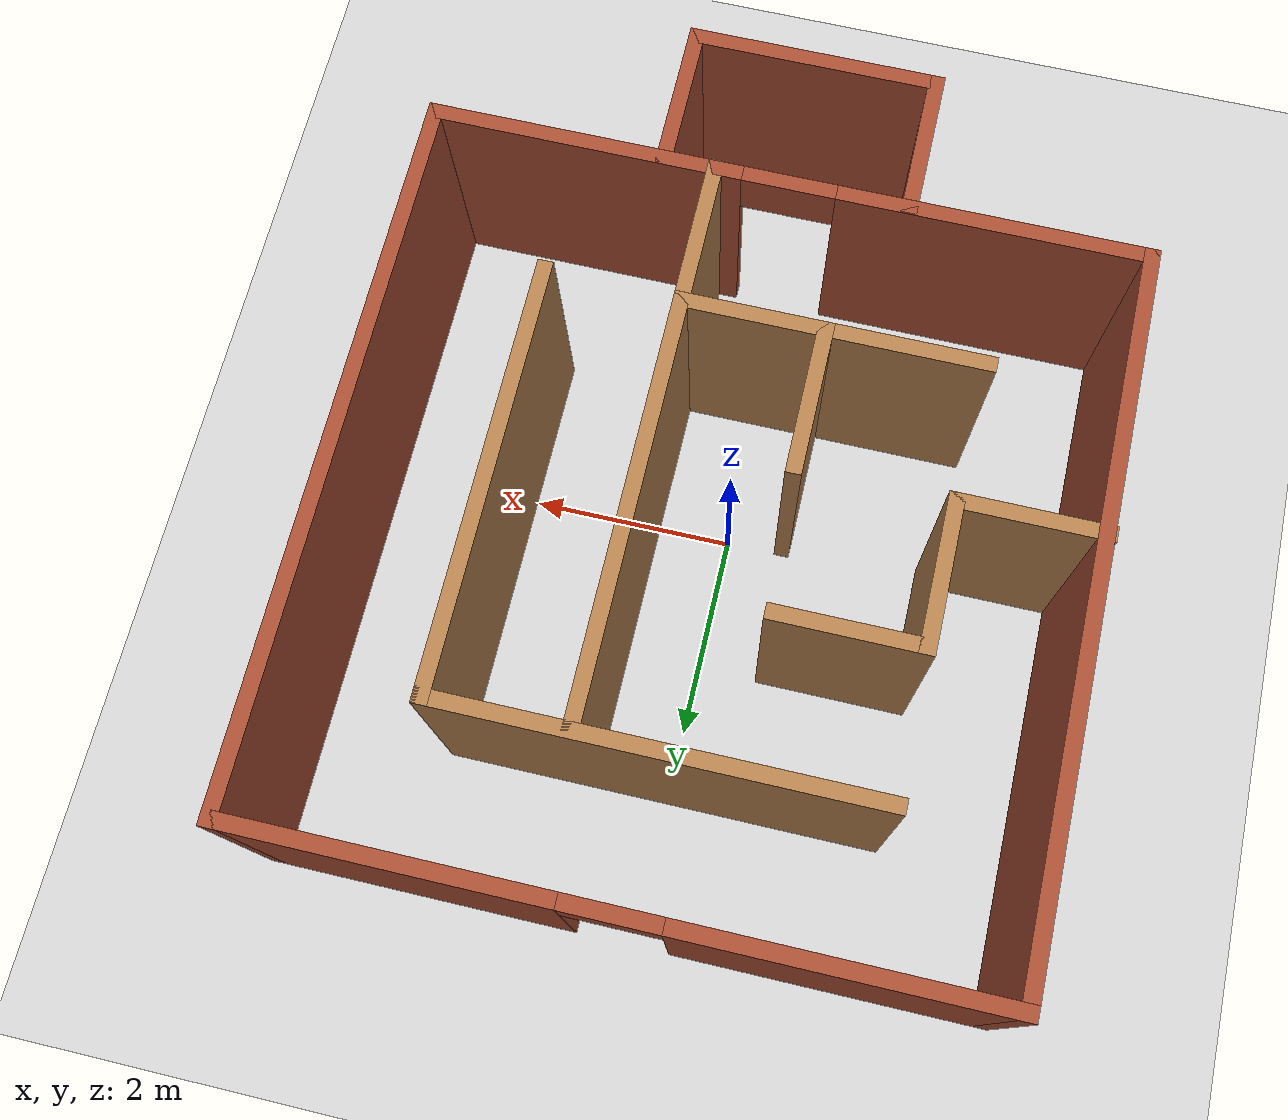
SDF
<sdf version="1.7">
 <world name="default">
  <light name="sun" type="directional">
   <pose>0 0 10 0 -0 0</pose>
   <diffuse>0.8 0.8 0.8 1</diffuse>
   <specular>0.2 0.2 0.2 1</specular>
   <attenuation>
    <range>1000</range>
    <constant>0.9</constant>
    <linear>0.01</linear>
    <quadratic>0.001</quadratic>
   </attenuation>
   <direction>-0.5 0.1 -0.9</direction>
   <spot><inner_angle>0</inner_angle><outer_angle>0</outer_angle><falloff>0</falloff></spot>
  </light>
  <model name="ground_plane">
   <static>1</static>
   <link name="link">
    <collision name="collision">
     <geometry><plane><normal>0 0 1</normal><size>100 100</size></plane></geometry>
     <surface><friction><ode><mu>100</mu><mu2>50</mu2></ode></friction></surface>
    </collision>
    <visual name="visual">
     <cast_shadows>0</cast_shadows>
     <geometry><plane><normal>0 0 1</normal><size>100 100</size></plane></geometry>
     <material>
      <script><uri>file://media/materials/scripts/gazebo.material</uri><name>Gazebo/Grey</name></script>
     </material>
    </visual>
   </link>
  </model>
  <gravity>0 0 -9.8</gravity>
  <magnetic_field>6e-06 2.3e-05 -4.2e-05</magnetic_field>
  <atmosphere type="adiabatic"/>
  <physics type="ode">
   <max_step_size>0.001</max_step_size>
   <real_time_factor>1</real_time_factor>
   <real_time_update_rate>1000</real_time_update_rate>
  </physics>
  <scene><ambient>0.4 0.4 0.4 1</ambient><background>0.7 0.7 0.7 1</background><shadows>1</shadows></scene>
  <audio><device>default</device></audio>
  <spherical_coordinates>
   <surface_model>EARTH_WGS84</surface_model>
   <latitude_deg>0</latitude_deg>
   <longitude_deg>0</longitude_deg>
   <elevation>0</elevation>
   <heading_deg>0</heading_deg>
  </spherical_coordinates>
  <model name="maze">
   <pose>0.083365 -0.083784 0 0 -0 0</pose>
   <link name="Wall_0">
    <collision name="Wall_0_Collision">
     <geometry><box><size>7 0.15 2.5</size></box></geometry>
     <pose>0 0 1.25 0 -0 0</pose>
    </collision>
    <visual name="Wall_0_Visual">
     <pose>0 0 1.25 0 -0 0</pose>
     <geometry><box><size>7 0.15 2.5</size></box></geometry>
     <material>
      <script><uri>file://media/materials/scripts/gazebo.material</uri><name>Gazebo/Bricks</name></script>
      <ambient>1 1 1 1</ambient>
     </material>
     <meta><layer>0</layer></meta>
    </visual>
    <pose>-3.41626 0.681812 0 0 -0 -1.5708</pose>
   </link>
   <link name="Wall_10">
    <collision name="Wall_10_Collision">
     <geometry><box><size>4.25 0.15 2.5</size></box></geometry>
     <pose>0 0 1.25 0 -0 0</pose>
    </collision>
    <visual name="Wall_10_Visual">
     <pose>0 0 1.25 0 -0 0</pose>
     <geometry><box><size>4.25 0.15 2.5</size></box></geometry>
     <material>
      <script><uri>file://media/materials/scripts/gazebo.material</uri><name>Gazebo/Wood</name></script>
      <ambient>1 1 1 1</ambient>
     </material>
     <meta><layer>0</layer></meta>
    </visual>
    <pose>2.01299 0.675098 0 0 -0 -1.5708</pose>
   </link>
   <link name="Wall_12">
    <collision name="Wall_12_Collision">
     <geometry><box><size>5.60693 0.15 2.5</size></box></geometry>
     <pose>0 0 1.25 0 -0 0</pose>
    </collision>
    <visual name="Wall_12_Visual">
     <pose>0 0 1.25 0 -0 0</pose>
     <geometry><box><size>5.60693 0.15 2.5</size></box></geometry>
     <material>
      <script><uri>file://media/materials/scripts/gazebo.material</uri><name>Gazebo/Wood</name></script>
      <ambient>1 1 1 1</ambient>
     </material>
     <meta><layer>0</layer></meta>
    </visual>
    <pose>0.711399 -0.020842 0 0 -0 -1.5708</pose>
   </link>
   <link name="Wall_14">
    <collision name="Wall_14_Collision">
     <geometry><box><size>1.5 0.15 2.5</size></box></geometry>
     <pose>0 0 1.25 0 -0 0</pose>
    </collision>
    <visual name="Wall_14_Visual">
     <pose>0 0 1.25 0 -0 0</pose>
     <geometry><box><size>1.5 0.15 2.5</size></box></geometry>
     <material>
      <script><uri>file://media/materials/scripts/gazebo.material</uri><name>Gazebo/Wood</name></script>
      <ambient>1 1 1 1</ambient>
     </material>
     <meta><layer>0</layer></meta>
    </visual>
    <pose>-2.75874 -0.003352 0 0 -0 0</pose>
   </link>
   <link name="Wall_15">
    <collision name="Wall_15_Collision">
     <geometry><box><size>1.5 0.15 2.5</size></box></geometry>
     <pose>0 0 1.25 0 -0 0</pose>
    </collision>
    <visual name="Wall_15_Visual">
     <pose>0 0 1.25 0 -0 0</pose>
     <geometry><box><size>1.5 0.15 2.5</size></box></geometry>
     <material>
      <script><uri>file://media/materials/scripts/gazebo.material</uri><name>Gazebo/Wood</name></script>
      <ambient>1 1 1 1</ambient>
     </material>
     <meta><layer>0</layer></meta>
    </visual>
    <pose>-2.08374 0.671648 0 0 -0 1.5708</pose>
   </link>
   <link name="Wall_16">
    <collision name="Wall_16_Collision">
     <geometry><box><size>1.5 0.15 2.5</size></box></geometry>
     <pose>0 0 1.25 0 -0 0</pose>
    </collision>
    <visual name="Wall_16_Visual">
     <pose>0 0 1.25 0 -0 0</pose>
     <geometry><box><size>1.5 0.15 2.5</size></box></geometry>
     <material>
      <script><uri>file://media/materials/scripts/gazebo.material</uri><name>Gazebo/Wood</name></script>
      <ambient>1 1 1 1</ambient>
     </material>
     <meta><layer>0</layer></meta>
    </visual>
    <pose>-1.40874 1.34665 0 0 -0 0</pose>
   </link>
   <link name="Wall_18">
    <collision name="Wall_18_Collision">
     <geometry><box><size>3 0.15 2.5</size></box></geometry>
     <pose>0 0 1.25 0 -0 0</pose>
    </collision>
    <visual name="Wall_18_Visual">
     <pose>0 0 1.25 0 -0 0</pose>
     <geometry><box><size>3 0.15 2.5</size></box></geometry>
     <material>
      <script><uri>file://media/materials/scripts/gazebo.material</uri><name>Gazebo/Wood</name></script>
      <ambient>1 1 1 1</ambient>
     </material>
     <meta><layer>0</layer></meta>
    </visual>
    <pose>-0.713601 -1.35009 0 0 -0 3.14159</pose>
   </link>
   <link name="Wall_20">
    <collision name="Wall_20_Collision">
     <geometry><box><size>1.5 0.15 2.5</size></box></geometry>
     <pose>0 0 1.25 0 -0 0</pose>
    </collision>
    <visual name="Wall_20_Visual">
     <pose>0 0 1.25 0 -0 0</pose>
     <geometry><box><size>1.5 0.15 2.5</size></box></geometry>
     <material>
      <script><uri>file://media/materials/scripts/gazebo.material</uri><name>Gazebo/Wood</name></script>
      <ambient>1 1 1 1</ambient>
     </material>
     <meta><layer>0</layer></meta>
    </visual>
    <pose>-0.635335 -0.675087 0 0 -0 1.5708</pose>
   </link>
   <link name="Wall_22">
    <pose>0.008745 4.10681 0 0 -0 0</pose>
    <visual name="Wall_22_Visual_0">
     <pose>-1.96767 0 1.25 0 -0 0</pose>
     <geometry><box><size>3.06465 0.15 2.5</size></box></geometry>
     <material>
      <script><uri>file://media/materials/scripts/gazebo.material</uri><name>Gazebo/Bricks</name></script>
      <ambient>1 1 1 1</ambient>
     </material>
     <meta><layer>0</layer></meta>
    </visual>
    <collision name="Wall_22_Collision_0">
     <geometry><box><size>3.06465 0.15 2.5</size></box></geometry>
     <pose>-1.96767 0 1.25 0 -0 0</pose>
    </collision>
    <visual name="Wall_22_Visual_1">
     <pose>1.98233 0 1.25 0 -0 0</pose>
     <geometry><box><size>3.03535 0.15 2.5</size></box></geometry>
     <material>
      <script><uri>file://media/materials/scripts/gazebo.material</uri><name>Gazebo/Bricks</name></script>
      <ambient>1 1 1 1</ambient>
     </material>
     <meta><layer>0</layer></meta>
    </visual>
    <collision name="Wall_22_Collision_1">
     <geometry><box><size>3.03535 0.15 2.5</size></box></geometry>
     <pose>1.98233 0 1.25 0 -0 0</pose>
    </collision>
    <visual name="Wall_22_Visual_2">
     <pose>0.014652 0 2.25 0 -0 0</pose>
     <geometry><box><size>0.9 0.15 0.5</size></box></geometry>
     <material>
      <script><uri>file://media/materials/scripts/gazebo.material</uri><name>Gazebo/Bricks</name></script>
      <ambient>1 1 1 1</ambient>
     </material>
     <meta><layer>0</layer></meta>
    </visual>
    <collision name="Wall_22_Collision_2">
     <geometry><box><size>0.9 0.15 0.5</size></box></geometry>
     <pose>0.014652 0 2.25 0 -0 0</pose>
    </collision>
   </link>
   <link name="Wall_24">
    <collision name="Wall_24_Collision">
     <geometry><box><size>1.5 0.15 2.5</size></box></geometry>
     <pose>0 0 1.25 0 -0 0</pose>
    </collision>
    <visual name="Wall_24_Visual">
     <pose>0 0 1.25 0 -0 0</pose>
     <geometry><box><size>1.5 0.15 2.5</size></box></geometry>
     <material>
      <script><uri>file://media/materials/scripts/gazebo.material</uri><name>Gazebo/Bricks</name></script>
      <ambient>1 1 1 1</ambient>
     </material>
     <meta><layer>0</layer></meta>
    </visual>
    <pose>-1.14701 -3.43181 0 0 -0 -1.5708</pose>
   </link>
   <link name="Wall_25">
    <collision name="Wall_25_Collision">
     <geometry><box><size>2.5 0.15 2.5</size></box></geometry>
     <pose>0 0 1.25 0 -0 0</pose>
    </collision>
    <visual name="Wall_25_Visual">
     <pose>0 0 1.25 0 -0 0</pose>
     <geometry><box><size>2.5 0.15 2.5</size></box></geometry>
     <material>
      <script><uri>file://media/materials/scripts/gazebo.material</uri><name>Gazebo/Bricks</name></script>
      <ambient>1 1 1 1</ambient>
     </material>
     <meta><layer>0</layer></meta>
    </visual>
    <pose>0.027988 -4.10681 0 0 -0 0</pose>
   </link>
   <link name="Wall_26">
    <collision name="Wall_26_Collision">
     <geometry><box><size>1.5 0.15 2.5</size></box></geometry>
     <pose>0 0 1.25 0 -0 0</pose>
    </collision>
    <visual name="Wall_26_Visual">
     <pose>0 0 1.25 0 -0 0</pose>
     <geometry><box><size>1.5 0.15 2.5</size></box></geometry>
     <material>
      <script><uri>file://media/materials/scripts/gazebo.material</uri><name>Gazebo/Bricks</name></script>
      <ambient>1 1 1 1</ambient>
     </material>
     <meta><layer>0</layer></meta>
    </visual>
    <pose>1.20299 -3.43181 0 0 -0 1.5708</pose>
   </link>
   <link name="Wall_3">
    <pose>0.008745 -2.74319 0 0 -0 0</pose>
    <visual name="Wall_3_Visual_0">
     <pose>-1.98097 0 1.25 0 -0 0</pose>
     <geometry><box><size>3.03805 0.15 2.5</size></box></geometry>
     <material>
      <script><uri>file://media/materials/scripts/gazebo.material</uri><name>Gazebo/Bricks</name></script>
      <ambient>1 1 1 1</ambient>
     </material>
     <meta><layer>0</layer></meta>
    </visual>
    <collision name="Wall_3_Collision_0">
     <geometry><box><size>3.03805 0.15 2.5</size></box></geometry>
     <pose>-1.98097 0 1.25 0 -0 0</pose>
    </collision>
    <visual name="Wall_3_Visual_1">
     <pose>1.96903 0 1.25 0 -0 0</pose>
     <geometry><box><size>3.06195 0.15 2.5</size></box></geometry>
     <material>
      <script><uri>file://media/materials/scripts/gazebo.material</uri><name>Gazebo/Bricks</name></script>
      <ambient>1 1 1 1</ambient>
     </material>
     <meta><layer>0</layer></meta>
    </visual>
    <collision name="Wall_3_Collision_1">
     <geometry><box><size>3.06195 0.15 2.5</size></box></geometry>
     <pose>1.96903 0 1.25 0 -0 0</pose>
    </collision>
    <visual name="Wall_3_Visual_2">
     <pose>-0.011948 0 2.25 0 -0 0</pose>
     <geometry><box><size>0.9 0.15 0.5</size></box></geometry>
     <material>
      <script><uri>file://media/materials/scripts/gazebo.material</uri><name>Gazebo/Bricks</name></script>
      <ambient>1 1 1 1</ambient>
     </material>
     <meta><layer>0</layer></meta>
    </visual>
    <collision name="Wall_3_Collision_2">
     <geometry><box><size>0.9 0.15 0.5</size></box></geometry>
     <pose>-0.011948 0 2.25 0 -0 0</pose>
    </collision>
   </link>
   <link name="Wall_4">
    <collision name="Wall_4_Collision">
     <geometry><box><size>7 0.15 2.5</size></box></geometry>
     <pose>0 0 1.25 0 -0 0</pose>
    </collision>
    <visual name="Wall_4_Visual">
     <pose>0 0 1.25 0 -0 0</pose>
     <geometry><box><size>7 0.15 2.5</size></box></geometry>
     <material>
      <script><uri>file://media/materials/scripts/gazebo.material</uri><name>Gazebo/Bricks</name></script>
      <ambient>1 1 1 1</ambient>
     </material>
     <meta><layer>0</layer></meta>
    </visual>
    <pose>3.43375 0.681812 0 0 -0 1.5708</pose>
   </link>
   <link name="Wall_9">
    <collision name="Wall_9_Collision">
     <geometry><box><size>4.25 0.15 2.5</size></box></geometry>
     <pose>0 0 1.25 0 -0 0</pose>
    </collision>
    <visual name="Wall_9_Visual">
     <pose>0 0 1.25 0 -0 0</pose>
     <geometry><box><size>4.25 0.15 2.5</size></box></geometry>
     <material>
      <script><uri>file://media/materials/scripts/gazebo.material</uri><name>Gazebo/Wood</name></script>
      <ambient>1 1 1 1</ambient>
     </material>
     <meta><layer>0</layer></meta>
    </visual>
    <pose>-0.037011 2.7251 0 0 -0 0</pose>
   </link>
   <static>1</static>
  </model>
 </world>
</sdf>
